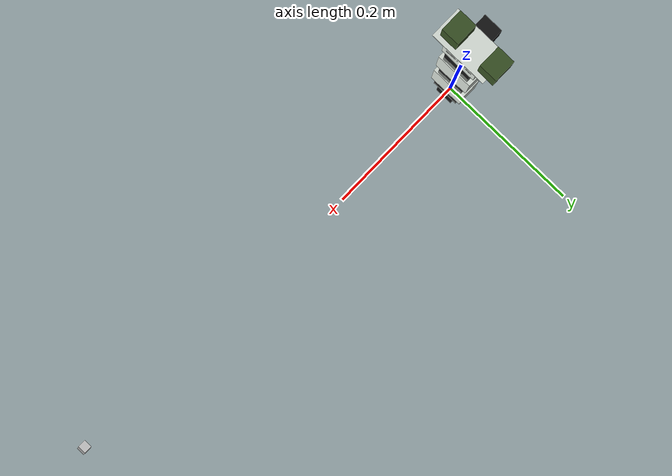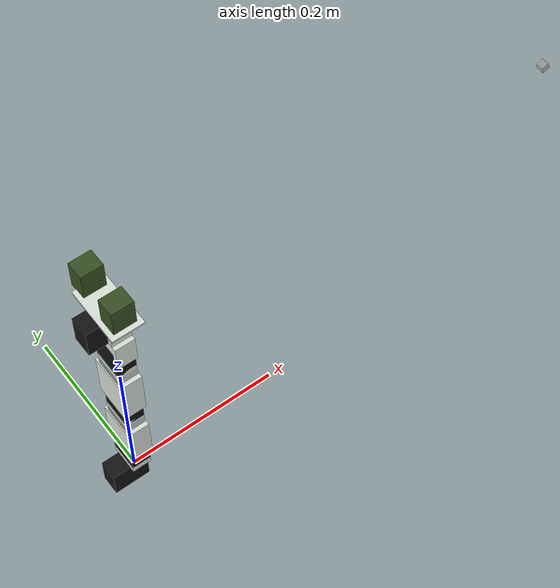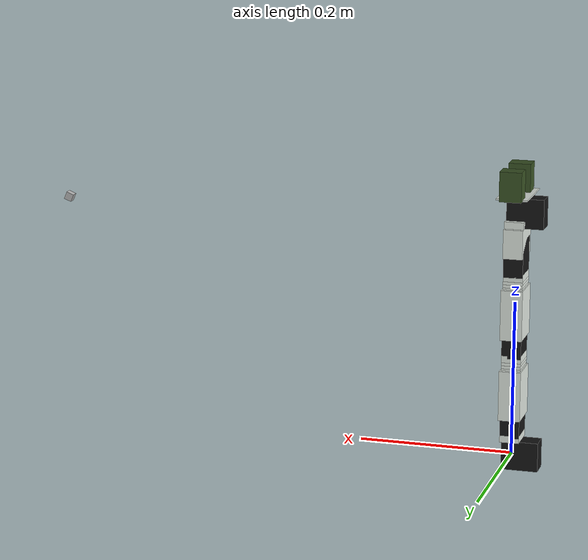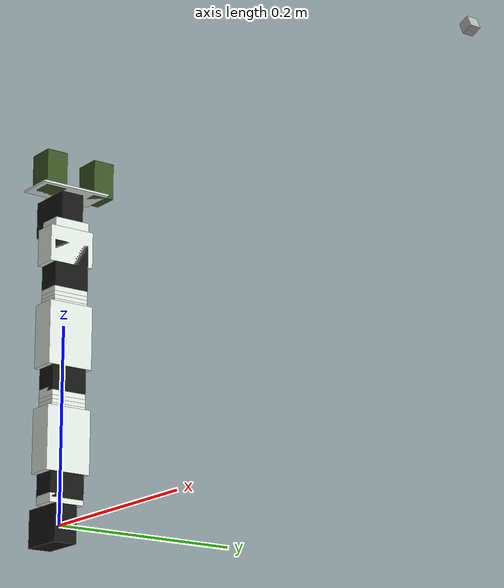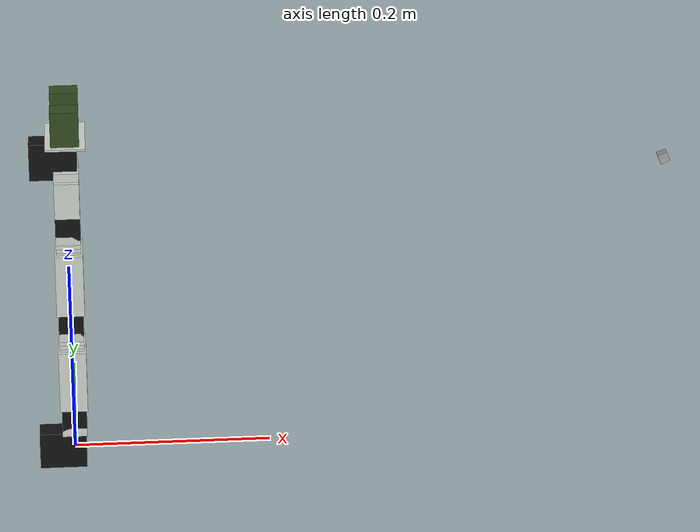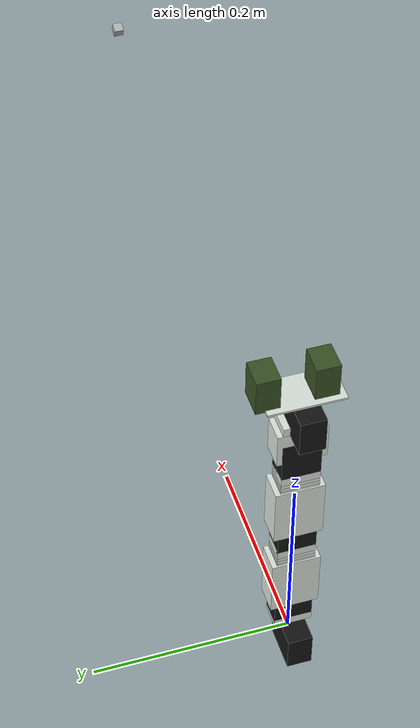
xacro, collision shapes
<?xml version="1.0"?>
<robot name="cube_stack_arm" xmlns:xacro="http://ros.org/wiki/xacro">

  <!-- Attach Arm to Ground -->
  <link name="world"></link>

  <xacro:include filename="$(find cube_stack_env)/urdf/turtlebot_arm/turtlebot_arm.xacro"/>
  <xacro:turtlebot_arm parent="world" color="White" gripper="pincher" control="position">
    <origin xyz="0 0 0"/>
  </xacro:turtlebot_arm>

  <xacro:include filename="$(find cube_stack_env)/urdf/sensors.xacro"/>
  <xacro:depth_camera camera_name="depth_camera" parent_link="arm_base_link" far_range="1.0">
    <box size="0.01 0.01 0.01"/>
    <origin xyz="0.6 0 0.3" rpy="0 0.392 3.14"/>
  </xacro:depth_camera>

</robot>

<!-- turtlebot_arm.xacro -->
<!-- Arm description for Turtlebot Arm -->
<robot xmlns:xacro="http://ros.org/wiki/xacro">
  <xacro:include filename="$(find cube_stack_env)/urdf/turtlebot_arm/arm_hardware.xacro"/>

  <xacro:property name="joints_vlimit" value="0.571"/>
  <xacro:property name="pan_llimit" value="-2.617"/>
  <xacro:property name="pan_ulimit" value="2.617"/>
  <xacro:property name="shoulder_llimit" value="-2.617"/>
  <xacro:property name="shoulder_ulimit" value="2.617"/>
  <xacro:property name="elbow_llimit" value="-2.617"/>
  <xacro:property name="elbow_ulimit" value="2.617"/>
  <xacro:property name="wrist_llimit" value="-1.745"/>
  <xacro:property name="wrist_ulimit" value="1.745"/>

  <material name="White">
    <color rgba="0.87 0.90 0.87 1.0"/>
  </material>
  <material name="Black">
    <color rgba="0.08 0.08 0.08 1.0"/>
  </material>
  <material name="Gray">
    <color rgba="0.2 0.2 0.21 1.0"/>
  </material>
  <material name="Green">
    <color rgba="0.22 0.32 0.14 1.0"/>
  </material>

  <xacro:macro name="turtlebot_arm" params="parent color control gripper *origin">
    <link name="arm_base_link"/>
    <joint name="arm_base_joint" type="fixed">
      <xacro:insert_block name="origin"/>
      <parent link="${parent}"/>
      <child link="arm_base_link"/>
    </joint>

    <!-- shoulder pan joint -->
    <xacro:dynamixel_AX12_fixed parent="arm_base_link" name="arm_shoulder_pan_servo">
      <origin xyz="0 0 0" rpy="${M_PI/2} 0 ${M_PI/2}"/>
    </xacro:dynamixel_AX12_fixed>
    <xacro:bioloid_F3_revolute parent="arm_shoulder_pan_servo_link" name="arm_shoulder_pan" color="${color}"
                         vlimit="${joints_vlimit}" llimit="${pan_llimit}" ulimit="${pan_ulimit}">
      <origin xyz="0 ${AX12_WIDTH/2} 0" rpy="${-M_PI/2} ${M_PI/2} ${M_PI}"/>
    </xacro:bioloid_F3_revolute>

    <!-- shoulder lift joint -->
    <xacro:dynamixel_AX12_fixed parent="arm_shoulder_pan_link" name="arm_shoulder_lift_servo">
      <origin xyz="0 0 ${-AX12_HEIGHT-F10_HEIGHT+0.001}" rpy="0 ${M_PI} 0"/>
    </xacro:dynamixel_AX12_fixed>
    <xacro:bioloid_F4_revolute parent="arm_shoulder_lift_servo_link" name="arm_shoulder_lift" color="${color}"
                         vlimit="${joints_vlimit}" llimit="${shoulder_llimit}" ulimit="${shoulder_ulimit}">
      <origin xyz="0 0 0" rpy="0 0 0"/>
    </xacro:bioloid_F4_revolute>
    <xacro:bioloid_F10_fixed parent="arm_shoulder_lift_link" name="arm_shoulder_F10_0" color="${color}">
      <origin xyz="0 0 ${F4_HEIGHT+F10_HEIGHT/2}" rpy="0 0 0"/>
    </xacro:bioloid_F10_fixed>
    <xacro:bioloid_F10_fixed parent="arm_shoulder_F10_0_link" name="arm_shoulder_F10_1" color="${color}">
      <origin xyz="0 0 ${F10_HEIGHT}" rpy="0 0 0"/>
    </xacro:bioloid_F10_fixed>
    <xacro:bioloid_F10_fixed parent="arm_shoulder_F10_1_link" name="arm_shoulder_F10_2" color="${color}">
      <origin xyz="0 0 ${F10_HEIGHT}" rpy="0 0 0"/>
    </xacro:bioloid_F10_fixed>
    <xacro:bioloid_F3_fixed parent="arm_shoulder_F10_2_link" name="arm_shoulder_F3_0" color="${color}">
      <origin xyz="0 0 ${F10_HEIGHT/2}" rpy="0 ${M_PI} 0"/>
    </xacro:bioloid_F3_fixed>

    <!-- elbow joint -->
    <xacro:dynamixel_AX12_fixed parent="arm_shoulder_F3_0_link" name="arm_elbow_flex_servo">
      <origin xyz="0 0 ${-AX12_HEIGHT-F10_HEIGHT+0.001}" rpy="0 ${M_PI} 0"/>
    </xacro:dynamixel_AX12_fixed>
    <xacro:bioloid_F4_revolute parent="arm_elbow_flex_servo_link" name="arm_elbow_flex" color="${color}"
                         vlimit="${joints_vlimit}" llimit="${elbow_llimit}" ulimit="${elbow_ulimit}">
      <origin xyz="0 0 0" rpy="0 0 0"/>
    </xacro:bioloid_F4_revolute>
    <xacro:bioloid_F10_fixed parent="arm_elbow_flex_link" name="arm_elbow_F10_0" color="${color}">
      <origin xyz="0 0 ${F4_HEIGHT+F10_HEIGHT/2}" rpy="0 0 0"/>
    </xacro:bioloid_F10_fixed>
    <xacro:bioloid_F10_fixed parent="arm_elbow_F10_0_link" name="arm_elbow_F10_1" color="${color}">
      <origin xyz="0 0 ${F10_HEIGHT}" rpy="0 0 0"/>
    </xacro:bioloid_F10_fixed>
    <xacro:bioloid_F10_fixed parent="arm_elbow_F10_1_link" name="arm_elbow_F10_2" color="${color}">
      <origin xyz="0 0 ${F10_HEIGHT}" rpy="0 0 0"/>
    </xacro:bioloid_F10_fixed>
    <xacro:bioloid_F3_fixed parent="arm_elbow_F10_2_link" name="arm_elbow_F3_0" color="${color}">
      <origin xyz="0 0 ${F10_HEIGHT/2}" rpy="0 ${M_PI} 0"/>
    </xacro:bioloid_F3_fixed>

    <!-- wrist joint -->
    <xacro:dynamixel_AX12_fixed parent="arm_elbow_F3_0_link" name="arm_wrist_flex_servo">
      <origin xyz="0 0 ${-AX12_HEIGHT-F10_HEIGHT+0.001}" rpy="0 ${M_PI} 0"/>
    </xacro:dynamixel_AX12_fixed>
    <xacro:bioloid_F2_revolute parent="arm_wrist_flex_servo_link" name="arm_wrist_flex" color="${color}"
                         vlimit="${joints_vlimit}" llimit="${wrist_llimit}" ulimit="${wrist_ulimit}">
      <origin xyz="0 0 0" rpy="0 0 0"/>
    </xacro:bioloid_F2_revolute>

    <!-- gripper - Load Turtlebot gripper -->
    <xacro:if value="${gripper == 'turtlebot'}">
      <xacro:include filename="$(find cube_stack_env)/urdf/turtlebot_arm/turtlebot_gripper.xacro"/>
    </xacro:if>
    <xacro:if value="${gripper == 'pincher'}">
      <xacro:include filename="$(find cube_stack_env)/urdf/turtlebot_arm/pincher_gripper.xacro"/>
    </xacro:if>

    <xacro:if value="${control == 'position'}">
      <xacro:macro name="servo_transmission" params="name">
        <transmission name="${name}_trans">
          <type>transmission_interface/SimpleTransmission</type>
          <actuator name="${name}_motor">
            <mechanicalReduction>1</mechanicalReduction>
          </actuator>
          <joint name="${name}_joint">
            <hardwareInterface>hardware_interface/PositionJointInterface</hardwareInterface>
          </joint>
        </transmission>
      </xacro:macro>
    </xacro:if>

    <xacro:if value="${control == 'effort'}">
      <xacro:macro name="servo_transmission" params="name">
        <transmission name="${name}_trans">
          <type>transmission_interface/SimpleTransmission</type>
          <actuator name="${name}_motor">
            <mechanicalReduction>1</mechanicalReduction>
          </actuator>
          <joint name="${name}_joint">
            <hardwareInterface>hardware_interface/EffortJointInterface</hardwareInterface>
          </joint>
        </transmission>
      </xacro:macro>
    </xacro:if>

    <xacro:servo_transmission name="arm_shoulder_pan"/>
    <xacro:servo_transmission name="arm_shoulder_lift"/>
    <xacro:servo_transmission name="arm_elbow_flex"/>
    <xacro:servo_transmission name="arm_wrist_flex"/>
    <xacro:servo_transmission name="gripper"/>

    <!-- Gazebo plugin for ROS Control -->
    <gazebo>
      <plugin name="gazebo_ros_control" filename="libgazebo_ros_control.so">
        <robotNamespace>/cube_stack_arm</robotNamespace>
        <legacyModeNS>true</legacyModeNS>
        <robotSimType>gazebo_ros_control/DefaultRobotHWSim</robotSimType>
      </plugin>
    </gazebo>

  </xacro:macro>

</robot>

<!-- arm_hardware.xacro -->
<!-- Basic URDF components for Turtlebot Arm and PhantomX Pincher Arm-->
<robot xmlns:xacro="http://ros.org/wiki/xacro">
  <xacro:property name="M_PI" value="3.14159"/>
  <xacro:property name="M_SCALE" value="0.001"/>
  <xacro:property name="F10_HEIGHT" value="0.004"/>
  <xacro:property name="F4_HEIGHT" value="0.0525"/>
  <xacro:property name="F3_HEIGHT" value="0.009"/>
  <xacro:property name="AX12_HEIGHT" value="0.0385"/>
  <xacro:property name="AX12_WIDTH" value="0.038"/>
  <xacro:property name="AX12_LENGTH" value="0.050"/>
  <xacro:property name="F2_HEIGHT" value="0.0265"/>

  <!-- Calculates the inertial properties of a bounding box. From
       https://en.wikipedia.org/wiki/List_of_moments_of_inertia#List_of_3D_inertia_tensors-->
  <xacro:macro name="box_inertia" params="length width height mass">
    <inertial>
      <mass value="${mass}"/>
      <origin xyz="0 0 0"/>
      <inertia ixx="${mass/12*(height**2+length**2)}" ixy="0" ixz = "0"
               iyy="${mass/12*(width**2+length**2)}" iyz="0"
               izz="${mass/12*(width**2+height**2)}"/>
    </inertial>
  </xacro:macro>

  <xacro:macro name="arm_mount" params="parent name color *origin">
    <joint name="${name}_joint" type="fixed">
      <xacro:insert_block name="origin"/>
      <parent link="${parent}"/>
      <child link="${name}_link"/>
    </joint>

    <link name="${name}_link">
      <xacro:box_inertia length="0.074" width="0.074" height="0.004" mass="0.018"/>

      <visual>
        <origin xyz="-0.028 -0.0493 0.014" rpy="0.0 0.0 -${M_PI/2}"/>
        <geometry>
          <mesh filename="package://cube_stack_env/meshes/turtlebot_arm/mount.stl" scale="${M_SCALE} ${M_SCALE} ${M_SCALE}"/>
        </geometry>
        <material name="${color}"/>
      </visual>

      <collision>
        <origin xyz="-0.01 0.0 0.0165" rpy="0.0 0.0 0.0"/>
        <geometry>
          <box size="0.074 0.074 0.004"/>
        </geometry>
      </collision>
    </link>

    <gazebo reference="${name}_link">
      <material>Gazebo/${color}</material>
      <selfCollide>true</selfCollide>
      <gravity>true</gravity>
    </gazebo>
  </xacro:macro>

  <xacro:macro name="finger_fixed" params="parent name color *origin">
    <joint name="${name}_joint" type="fixed">
      <xacro:insert_block name="origin"/>
      <parent link="${parent}"/>
      <child link="${name}_link"/>
    </joint>

    <link name="${name}_link">
      <xacro:box_inertia length="0.0783" width="0.03801" height="0.0193" mass="0.015"/>

      <visual>
        <origin xyz=" 0 0 0 " rpy="0 0 0"/>
        <geometry>
          <mesh filename="package://cube_stack_env/meshes/turtlebot_arm/turtlebot_finger.stl" scale="${M_SCALE} ${M_SCALE} ${M_SCALE}"/>
        </geometry>
        <material name="${color}"/>
      </visual>

      <collision>
        <origin xyz="0.02645 0.0 -0.00655" rpy="0 0 0"/>
        <geometry>
          <box size="0.0783 0.03801 0.0193"/>
        </geometry>
      </collision>
    </link>

    <gazebo reference="${name}_link">
      <material>Gazebo/${color}</material>
      <selfCollide>true</selfCollide>
      <gravity>true</gravity>
    </gazebo>
  </xacro:macro>

  <xacro:macro name="dynamixel_AX12_fixed" params="parent name *origin">
    <joint name="${name}_joint" type="fixed">
      <xacro:insert_block name="origin"/>
      <parent link="${parent}"/>
      <child link="${name}_link"/>
    </joint>

    <link name="${name}_link">
      <inertial>
        <mass value="0.055"/>
        <origin xyz="0 0 0"/>
        <inertia ixx="0.000017012" ixy="0.0" ixz="0.0"
                 iyy="0.000013258" iyz="0.0"
                 izz="0.000009483"/>
      </inertial>

      <visual>
        <origin xyz=" 0 0 0 " rpy="0 0 0"/>
        <geometry>
          <mesh filename="package://cube_stack_env/meshes/turtlebot_arm/ax12_box.stl" scale="${M_SCALE} ${M_SCALE} ${M_SCALE}"/>
        </geometry>
        <material name="Black"/>
      </visual>

      <collision>
        <origin xyz="0.0 0.0 -0.01241" rpy="0 0 0"/>
        <geometry>
          <box size="0.025 0.038 0.04762"/>
        </geometry>
      </collision>
    </link>

    <gazebo reference="${name}_link">
      <material>Gazebo/Black</material>
      <selfCollide>true</selfCollide>
      <gravity>true</gravity>
    </gazebo>
  </xacro:macro>

  <xacro:macro name="bioloid_F10_fixed" params="parent name color *origin">
    <joint name="${name}_joint" type="fixed">
      <xacro:insert_block name="origin"/>
      <parent link="${parent}"/>
      <child link="${name}_link"/>
    </joint>

    <link name="${name}_link">
      <xacro:box_inertia length="0.025" width="0.038" height="0.004" mass="0.004"/>

      <visual>
        <origin xyz=" 0 0 0 " rpy="0 0 0"/>
        <geometry>
          <mesh filename="package://cube_stack_env/meshes/turtlebot_arm/F10.stl" scale="${M_SCALE} ${M_SCALE} ${M_SCALE}"/>
        </geometry>
        <material name="${color}"/>
      </visual>

      <collision>
        <origin xyz="0.0 0.0 0.0" rpy="0 0 0"/>
        <geometry>
          <box size="0.025 0.038 0.004"/>
        </geometry>
      </collision>
    </link>

    <gazebo reference="${name}_link">
      <material>Gazebo/${color}</material>
      <selfCollide>true</selfCollide>
      <gravity>true</gravity>
    </gazebo>
  </xacro:macro>

  <xacro:macro name="bioloid_F3_fixed" params="parent name color *origin">
    <joint name="${name}_joint" type="fixed">
      <xacro:insert_block name="origin"/>
      <parent link="${parent}"/>
      <child link="${name}_link"/>
    </joint>

    <link name="${name}_link">
      <xacro:box_inertia length="0.025" width="0.038" height="0.009" mass="0.005"/>

      <visual>
        <origin xyz=" 0 0 0 " rpy="0 0 0"/>
        <geometry>
          <mesh filename="package://cube_stack_env/meshes/turtlebot_arm/F3.stl" scale="${M_SCALE} ${M_SCALE} ${M_SCALE}"/>
        </geometry>
        <material name="${color}"/>
      </visual>

      <collision>
        <origin xyz="0.0 0.0 -0.0045" rpy="0 0 0"/>
        <geometry>
          <box size="0.025 0.038 0.009"/>
        </geometry>
      </collision>
    </link>

    <gazebo reference="${name}_link">
      <material>Gazebo/${color}</material>
      <selfCollide>true</selfCollide>
      <gravity>true</gravity>
    </gazebo>
  </xacro:macro>

  <xacro:macro name="bioloid_F3_revolute" params="parent name color llimit ulimit vlimit *origin">
    <joint name="${name}_joint" type="revolute">
      <xacro:insert_block name="origin"/>
      <axis xyz="0 0 -1"/>
      <limit effort="1" velocity="${vlimit}" lower="${llimit}" upper="${ulimit}"/>
      <dynamics friction="0.13"/>
      <parent link="${parent}"/>
      <child link="${name}_link"/>
    </joint>

    <link name="${name}_link">
      <xacro:box_inertia length="0.025" width="0.038" height="0.009" mass="0.008"/>

      <visual>
        <origin xyz=" 0 0 0 " rpy="0 0 0"/>
        <geometry>
          <mesh filename="package://cube_stack_env/meshes/turtlebot_arm/F3.stl" scale="${M_SCALE} ${M_SCALE} ${M_SCALE}"/>
        </geometry>
        <material name="${color}"/>
      </visual>

      <collision>
        <origin xyz="0.0 0.0 -0.0045" rpy="0 0 0"/>
        <geometry>
          <box size="0.025 0.038 0.009"/>
        </geometry>
      </collision>
    </link>

    <gazebo reference="${name}_link">
      <material>Gazebo/${color}</material>
      <selfCollide>true</selfCollide>
      <gravity>true</gravity>
    </gazebo>
  </xacro:macro>

  <xacro:macro name="bioloid_F2_revolute" params="parent name color llimit ulimit vlimit *origin">
    <joint name="${name}_joint" type="revolute">
      <xacro:insert_block name="origin"/>
      <axis xyz="0 1 0"/>
      <limit effort="1" velocity="${vlimit}" lower="${llimit}" upper="${ulimit}"/>
      <dynamics friction="0.13"/>
      <parent link="${parent}"/>
      <child link="${name}_link"/>
    </joint>

    <link name="${name}_link">
      <xacro:box_inertia length="0.025" width="0.0485" height="0.0375" mass="0.010"/>

      <visual>
        <origin xyz=" 0 0 0 " rpy="0 0 0"/>
        <geometry>
          <mesh filename="package://cube_stack_env/meshes/turtlebot_arm/F2.stl" scale="${M_SCALE} ${M_SCALE} ${M_SCALE}"/>
        </geometry>
        <material name="${color}"/>
      </visual>

      <collision>
        <origin xyz="0.0 0.0 0.00775" rpy="0 0 0"/>
        <geometry>
          <box size="0.025 0.0485 0.0375"/>
        </geometry>
      </collision>
    </link>

    <gazebo reference="${name}_link">
      <material>Gazebo/${color}</material>
      <selfCollide>true</selfCollide>
      <gravity>true</gravity>
    </gazebo>
  </xacro:macro>

  <xacro:macro name="bioloid_F4_revolute" params="parent name color llimit ulimit vlimit *origin">
    <joint name="${name}_joint" type="revolute">
      <xacro:insert_block name="origin"/>
      <axis xyz="0 1 0"/>
      <limit effort="1" velocity="${vlimit}" lower="${llimit}" upper="${ulimit}"/>
      <dynamics friction="0.13"/>
      <parent link="${parent}"/>
      <child link="${name}_link"/>
    </joint>

    <link name="${name}_link">
      <xacro:box_inertia length="0.028" width="0.0485" height="0.065" mass="0.016"/>

      <visual>
        <origin xyz=" 0 0 0 " rpy="0 0 0"/>
        <geometry>
          <mesh filename="package://cube_stack_env/meshes/turtlebot_arm/F4.stl" scale="${M_SCALE} ${M_SCALE} ${M_SCALE}"/>
        </geometry>
        <material name="${color}"/>
      </visual>

      <collision>
        <origin xyz="0.0 0.0 0.0215" rpy="0 0 0"/>
        <geometry>
          <box size="0.028 0.0485 0.065"/>
        </geometry>
      </collision>
    </link>

    <gazebo reference="${name}_link">
      <material>Gazebo/${color}</material>
      <selfCollide>true</selfCollide>
      <gravity>true</gravity>
    </gazebo>
  </xacro:macro>

  <xacro:macro name="gripper_finger_base" params="parent name color *origin">
    <joint name="${name}_joint" type="fixed">
      <xacro:insert_block name="origin"/>
      <parent link="${parent}"/>
      <child link="${name}_link"/>
    </joint>

    <link name="${name}_link">
      <xacro:box_inertia length="0.002" width="0.040" height="0.075" mass="0.00001"/>
      <visual>
        <origin xyz="0.016 0 -.015 " rpy="${M_PI} ${-M_PI/2} ${M_PI/2}"/>
        <geometry>
          <mesh filename="package://cube_stack_env/meshes/turtlebot_arm/pincher_finger_base.stl" scale=".01 .01 .01"/>
        </geometry>
        <material name="${color}"/>
      </visual>

      <collision>
        <origin xyz="0.016 0.0 -0.015" rpy="0 0 0"/>
        <geometry>
          <box size="0.002 0.040 0.075"/>
        </geometry>
      </collision>
    </link >

    <gazebo reference="${name}_link">
      <material>Gazebo/${color}</material>
      <selfCollide>true</selfCollide>
      <gravity>true</gravity>
    </gazebo>
  </xacro:macro>

    <xacro:macro name="pincher_gripper" params="name color *origin">
      <link name="${name}_link">
      <xacro:box_inertia length="0.036" width="0.028" height="0.004" mass="0.015"/>
      <visual>
        <xacro:insert_block name="origin"/>
        <geometry>
          <mesh filename="package://cube_stack_env/meshes/turtlebot_arm/pincher_finger.stl" scale=".01 .01 .01"/>
        </geometry>
        <material name="${color}"/>
      </visual>
      <collision>
        <xacro:insert_block name="origin"/>
        <geometry>
          <box size="0.023 0.028 0.038"/>
        </geometry>
      </collision>
    </link>

    <gazebo reference="${name}_link">
      <material>Gazebo/${color}</material>
      <selfCollide>true</selfCollide>
      <gravity>true</gravity>
    </gazebo>
  </xacro:macro>
</robot>

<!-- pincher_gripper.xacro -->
<!-- PhantomX Pincher Arm gripper URDF-->
<robot xmlns:xacro="http://ros.org/wiki/xacro">
    <xacro:bioloid_F3_fixed parent="arm_wrist_flex_link" name="arm_wrist_F3_0" color="${color}">
      <origin xyz="0 0 ${F2_HEIGHT}" rpy="0 ${M_PI} ${-M_PI}"/>
    </xacro:bioloid_F3_fixed>

    <!-- gripper joint -->
    <xacro:dynamixel_AX12_fixed parent="arm_wrist_F3_0_link" name="gripper_servo" >
      <origin xyz="0 0 ${-AX12_WIDTH/2}" rpy="${M_PI/2} ${M_PI} ${M_PI/2}"/>
    </xacro:dynamixel_AX12_fixed>

     <xacro:gripper_finger_base parent="gripper_servo_link" name="gripper_finger_base" color="${color}">
      <origin xyz="0.015  ${AX12_WIDTH} 0" rpy="${M_PI/2} ${-M_PI} ${M_PI/2}"/>
    </xacro:gripper_finger_base>

    <joint name="gripper_joint" type="prismatic">
      <origin xyz="0 0 0" rpy="0 0 0"/>
      <axis xyz="1 0 0"/>
      <limit effort="30" velocity="10" lower="-0.02" upper="0.02"/>
      <parent link="gripper_servo_link"/>
      <child link="gripper_active_link"/>
    </joint>

    <!-- Finger 1 -->
    <xacro:pincher_gripper name="gripper_active" color="Green" >
      <origin xyz="-0.02 0.04 0.0" rpy="${-M_PI/2} ${M_PI} 0"/>
    </xacro:pincher_gripper>

    <joint name="gripper2_joint" type="fixed">
      <origin xyz="0 0.05 0" rpy="0 0 0"/>
      <axis xyz="1 0 0"/>
      <parent link="gripper_servo_link"/>
      <child link="gripper_active2_link"/>
    </joint>

    <!-- Finger 2 -->
    <xacro:pincher_gripper name="gripper_active2" color="Green" >
      <origin xyz="0.035 -0.01 0.0" rpy="${-M_PI/2} 0 0"/>
    </xacro:pincher_gripper>

    <gazebo reference="gripper_active_link">
			<mu1 value="100.0"/>
			<mu2 value="50.0"/>
			<kp value="10000000.0" />
			<kd value="1.0" />
		</gazebo>

    <gazebo reference="gripper_active2_link">
			<mu1 value="100.0"/>
			<mu2 value="50.0"/>
			<kp value="10000000.0" />
			<kd value="1.0" />
		</gazebo>

    <gazebo>
      <plugin name="gazebo_grasp_fix" filename="libgazebo_grasp_fix.so">
        <robotNamespace>/cube_stack_arm</robotNamespace>
          <arm>
            <arm_name>arm</arm_name>
            <gripper_link>gripper_active_link</gripper_link>
            <gripper_link>arm_wrist_flex_link</gripper_link>
            <palm_link>arm_wrist_flex_link</palm_link>
          </arm>
        <forces_angle_tolerance>100</forces_angle_tolerance>
        <update_rate>4</update_rate>
        <grip_count_threshold>4</grip_count_threshold>
        <max_grip_count>8</max_grip_count>
        <release_tolerance>0.0005</release_tolerance>
        <disable_collisions_on_attach>false</disable_collisions_on_attach>
        <contact_topic>__default_topic__</contact_topic>
      </plugin>
    </gazebo>

</robot>

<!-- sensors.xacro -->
<robot xmlns:xacro="http://ros.org/wiki/xacro">

  <xacro:macro name="rgb_camera" params="camera_name parent_link *box *origin">
    <link name="${camera_name}">
      <collision>
        <origin xyz="0 0 0" rpy="0 0 0"/>
        <geometry>
          <xacro:insert_block name="box"/>
        </geometry>
      </collision>

      <visual>
        <origin xyz="0 0 0" rpy="0 0 0"/>
        <geometry>
          <xacro:insert_block name="box"/>
        </geometry>
      </visual>

    </link>

    <joint name="${camera_name}_joint" type="fixed">
      <axis xyz="1 0 0" />
      <xacro:insert_block name="origin"/>
      <parent link="${parent_link}"/>
      <child link="${camera_name}"/>
    </joint>

    <gazebo reference="${camera_name}">
      <sensor type="camera" name="${camera_name}">
        <update_rate>30.0</update_rate>
        <camera name="${camera_name}">
          <horizontal_fov>1.3962634</horizontal_fov>
          <image>
            <width>800</width>
            <height>800</height>
            <format>R8G8B8</format>
          </image>
          <clip>
            <near>0.02</near>
            <far>300</far>
          </clip>
          <noise>
            <type>gaussian</type>
            <mean>0.0</mean>
            <stddev>0.007</stddev>
          </noise>
        </camera>
        <plugin name="camera_controller" filename="libgazebo_ros_camera.so">
          <alwaysOn>true</alwaysOn>
          <updateRate>0.0</updateRate>
          <cameraName>${camera_name}</cameraName>
          <imageTopicName>image_raw</imageTopicName>
          <cameraInfoTopicName>camera_info</cameraInfoTopicName>
          <frameName>${camera_name}</frameName>
          <hackBaseline>0.07</hackBaseline>
          <distortionK1>0.0</distortionK1>
          <distortionK2>0.0</distortionK2>
          <distortionK3>0.0</distortionK3>
          <distortionT1>0.0</distortionT1>
          <distortionT2>0.0</distortionT2>
        </plugin>
      </sensor>
      <material>Gazebo/Gray</material>
    </gazebo>
  </xacro:macro>

  <xacro:macro name="depth_camera" params="camera_name parent_link far_range *box *origin">
    <link name="${camera_name}">
      <collision>
        <origin xyz="0 0 0" rpy="0 0 0"/>
        <geometry>
          <xacro:insert_block name="box"/>
        </geometry>
      </collision>

      <visual>
        <origin xyz="0 0 0" rpy="0 0 0"/>
        <geometry>
          <xacro:insert_block name="box"/>
        </geometry>
      </visual>

    </link>

    <joint name="${camera_name}_joint" type="fixed">
      <axis xyz="1 0 0" />
      <xacro:insert_block name="origin"/>
      <parent link="${parent_link}"/>
      <child link="${camera_name}"/>
    </joint>

    <link name="camera_depth_link"></link>
    <joint name="camera_depth_joint" type="fixed">
      <origin xyz="0 0 0" rpy="-${pi/2} 0 -${pi/2} "/>
      <parent link="${camera_name}"/>
      <child link="camera_depth_link"/>
    </joint>

    <gazebo reference="${camera_name}">
      <sensor name="${camera_name}_camera" type="depth">
        <update_rate>30</update_rate>
        <camera>
          <horizontal_fov>1.047198</horizontal_fov>
          <image>
            <width>640</width>
            <height>480</height>
            <format>R8G8B8</format>
          </image>
          <clip>
            <near>0.001</near>
            <far>${far_range}</far>
          </clip>
        </camera>
        <plugin name="${camera_name}_controller" filename="libgazebo_ros_openni_kinect.so">
          <baseline>0.2</baseline>
          <alwaysOn>true</alwaysOn>
          <updateRate>1.0</updateRate>
          <cameraName>${camera_name}</cameraName>
          <imageTopicName>/${camera_name}/rgb/image_raw</imageTopicName>
          <cameraInfoTopicName>/${camera_name}/rgb/camera_info</cameraInfoTopicName>
          <depthImageTopicName>/${camera_name}/depth/image_raw</depthImageTopicName>
          <depthImageInfoTopicName>/${camera_name}/depth/camera_info</depthImageInfoTopicName>
          <pointCloudTopicName>/${camera_name}/depth/points</pointCloudTopicName>
          <frameName>camera_depth_link</frameName>
          <pointCloudCutoff>0.001</pointCloudCutoff>
          <!-- Less then clip range will publish NaN in pointcloud -->
          <pointCloudCutoffMax>${far_range+1.0}</pointCloudCutoffMax>
          <distortionK1>0.00000001</distortionK1>
          <distortionK2>0.00000001</distortionK2>
          <distortionK3>0.00000001</distortionK3>
          <distortionT1>0.00000001</distortionT1>
          <distortionT2>0.00000001</distortionT2>
          <CxPrime>0</CxPrime>
          <Cx>0</Cx>
          <Cy>0</Cy>
          <focalLength>0</focalLength>
          <hackBaseline>0</hackBaseline>
        </plugin>
      </sensor>
    </gazebo>
  </xacro:macro>

  <xacro:macro name="imu" params="imu_name parent_link *box *origin">
    <link name="${imu_name}">

    <visual>
      <origin xyz="0 0 0" rpy="0 0 0"/>
      <geometry>
        <xacro:insert_block name="box"/>
      </geometry>
    </visual>

    </link>

    <joint name="${imu_name}_joint" type="fixed">
      <axis xyz="0 0 1" />
      <xacro:insert_block name="origin"/>
      <parent link="${parent_link}"/>
      <child link="${imu_name}"/>
    </joint>

    <gazebo reference="${imu_name}">
      <gravity>true</gravity>
      <sensor name="${imu_name}" type="imu">
        <always_on>true</always_on>
        <update_rate>100</update_rate>
        <visualize>true</visualize>
        <topic>__default_topic__</topic>
        <plugin filename="libgazebo_ros_imu_sensor.so" name="imu_plugin">
          <topicName>arm/${imu_name}</topicName>
          <bodyName>${imu_name}_link</bodyName>
          <updateRateHZ>30.0</updateRateHZ>
          <gaussianNoise>0.0</gaussianNoise>
          <xyzOffset>0 0 0</xyzOffset>
          <rpyOffset>0 0 0</rpyOffset>
          <frameName>${imu_name}</frameName>
        </plugin>
        <pose>0 0 0 0 0 0</pose>
      </sensor>
    </gazebo>
  </xacro:macro>

</robot>
